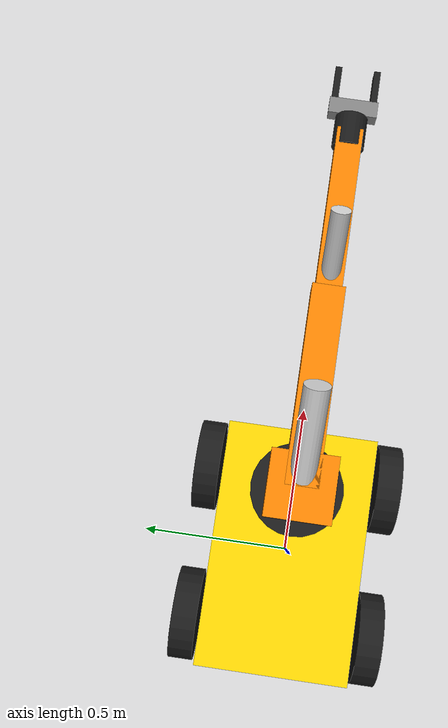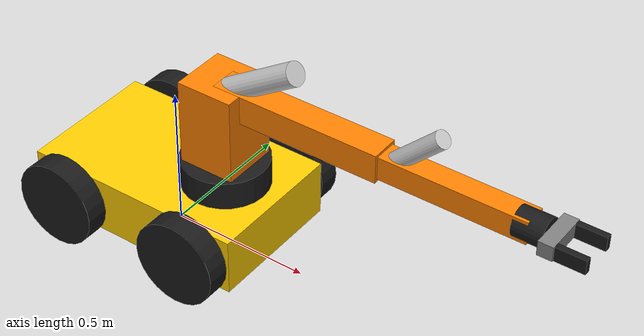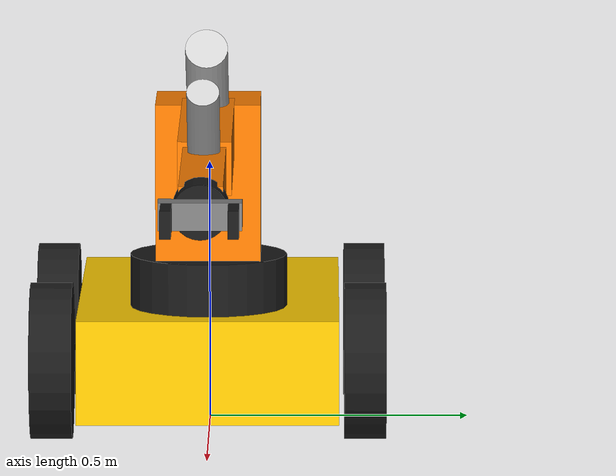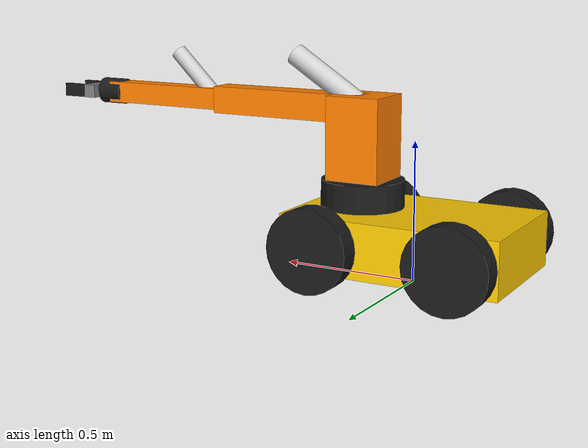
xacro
<?xml version="1.0"?>
<robot xmlns:xacro="http://www.ros.org/wiki/xacro" name="hydraulic_mobile_robot">

    <!-- Include sub-components -->
    <xacro:include filename="$(find hydraulic_bot)/urdf/mobile_base.xacro" />
    <xacro:include filename="$(find hydraulic_bot)/urdf/hydraulic_arm.xacro" />

    <!-- Create the robot -->
    <xacro:mobile_base />
    <xacro:hydraulic_arm parent="base_link" />

    <!-- Gazebo plugins (Global) -->
    <gazebo>
        <!-- Joint State Publisher -->
        <plugin filename="gz-sim-joint-state-publisher-system" name="gz::sim::systems::JointStatePublisher">
            <topic>joint_states</topic>
        </plugin>
    </gazebo>

</robot>

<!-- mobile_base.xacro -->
<robot xmlns:xacro="http://www.ros.org/wiki/xacro">

    <xacro:macro name="mobile_base">

        <!-- Base Footprint -->
        <link name="base_footprint" />

        <!-- Base Link (Chassis) -->
        <link name="base_link">
            <visual>
                <geometry>
                    <box size="0.8 0.5 0.2"/>
                </geometry>
                <origin xyz="0 0 0.15" rpy="0 0 0"/>
                <material name="yellow"> <!-- Construction vehicle color -->
                    <color rgba="1.0 0.8 0.0 1.0"/>
                </material>
            </visual>
            <collision>
                <geometry>
                    <box size="0.8 0.5 0.2"/>
                </geometry>
                <origin xyz="0 0 0.15" rpy="0 0 0"/>
            </collision>
            <inertial>
                <mass value="20.0"/>
                <origin xyz="0 0 0.15" rpy="0 0 0"/>
                <inertia ixx="0.5" ixy="0.0" ixz="0.0" iyy="1.0" iyz="0.0" izz="1.0"/>
            </inertial>
        </link>

        <joint name="base_joint" type="fixed">
            <parent link="base_footprint"/>
            <child link="base_link"/>
            <origin xyz="0 0 0.0" rpy="0 0 0"/>
        </joint>

        <!-- Wheels Macro -->
        <xacro:macro name="wheel" params="prefix x_reflect y_reflect">
            <link name="${prefix}_wheel">
                <visual>
                    <geometry>
                        <cylinder radius="0.15" length="0.08"/>
                    </geometry>
                    <origin xyz="0 0 0" rpy="${pi/2} 0 0"/>
                    <material name="black">
                        <color rgba="0.1 0.1 0.1 1.0"/>
                    </material>
                </visual>
                <collision>
                    <geometry>
                        <cylinder radius="0.15" length="0.08"/>
                    </geometry>
                    <origin xyz="0 0 0" rpy="${pi/2} 0 0"/>
                    <surface>
                        <friction>
                            <ode>
                                <mu>1.0</mu>
                                <mu2>1.0</mu2>
                            </ode>
                        </friction>
                    </surface>
                </collision>
                <inertial>
                    <mass value="2.0"/>
                    <origin xyz="0 0 0" rpy="${pi/2} 0 0"/>
                    <inertia ixx="0.02" ixy="0.0" ixz="0.0" iyy="0.02" iyz="0.0" izz="0.04"/>
                </inertial>
            </link>

            <joint name="${prefix}_wheel_joint" type="continuous">
                <parent link="base_link"/>
                <child link="${prefix}_wheel"/>
                <origin xyz="${x_reflect*0.25} ${y_reflect*0.3} 0.15" rpy="0 0 0"/>
                <axis xyz="0 1 0"/>
            </joint>
        </xacro:macro>

        <xacro:wheel prefix="front_left" x_reflect="1" y_reflect="1"/>
        <xacro:wheel prefix="front_right" x_reflect="1" y_reflect="-1"/>
        <xacro:wheel prefix="rear_left" x_reflect="-1" y_reflect="1"/>
        <xacro:wheel prefix="rear_right" x_reflect="-1" y_reflect="-1"/>

        <!-- Gazebo Plugin for Skid Steer Drive -->

        <gazebo>
            <plugin filename="gz-sim-diff-drive-system" name="gz::sim::systems::DiffDrive">
                <!-- Rear wheels -->
                <left_joint>rear_left_wheel_joint</left_joint>
                <right_joint>rear_right_wheel_joint</right_joint>
                <wheel_separation>0.6</wheel_separation>
                <wheel_radius>0.15</wheel_radius>
                <max_linear_acceleration>1.0</max_linear_acceleration>
                <odom_publish_frequency>30</odom_publish_frequency>
                <topic>cmd_vel</topic>
                <odom_topic>odom</odom_topic>
                <tf_topic>tf</tf_topic>
                <frame_id>odom</frame_id>
                <child_frame_id>base_footprint</child_frame_id>
            </plugin>

             <plugin filename="gz-sim-diff-drive-system" name="gz::sim::systems::DiffDrive">
                <left_joint>front_left_wheel_joint</left_joint>
                <right_joint>front_right_wheel_joint</right_joint>
                <wheel_separation>0.6</wheel_separation>
                <wheel_radius>0.15</wheel_radius>
                <topic>cmd_vel</topic> <!-- Listen to same topic -->
                 <odom_publish_frequency>0</odom_publish_frequency> <!-- Don't publish odom twice -->
            </plugin>
        </gazebo>

    </xacro:macro>
</robot>

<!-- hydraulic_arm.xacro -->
<robot xmlns:xacro="http://www.ros.org/wiki/xacro">

    <xacro:macro name="hydraulic_arm" params="parent">

        <!-- Arm Base -->
        <link name="arm_base_link">
             <visual>
                <geometry>
                    <cylinder radius="0.15" length="0.1"/>
                </geometry>
                <origin xyz="0 0 0.05" rpy="0 0 0"/>
                <material name="black">
                    <color rgba="0.1 0.1 0.1 1.0"/>
                </material>
            </visual>
            <collision>
                <geometry>
                    <cylinder radius="0.15" length="0.1"/>
                </geometry>
                <origin xyz="0 0 0.05" rpy="0 0 0"/>
            </collision>
            <inertial>
                <mass value="5.0"/>
                <origin xyz="0 0 0.05" rpy="0 0 0"/>
                <inertia ixx="0.05" ixy="0.0" ixz="0.0" iyy="0.05" iyz="0.0" izz="0.1"/>
            </inertial>
        </link>

        <joint name="arm_base_joint" type="fixed">
            <parent link="${parent}"/>
            <child link="arm_base_link"/>
            <origin xyz="0.2 0 0.25" rpy="0 0 0"/> <!-- Mounted on top of the car chassis -->
        </joint>

        <!-- Shoulder (Joint 1) - Turret rotation (Z-axis) -->
        <link name="shoulder_link">
            <visual>
                <geometry>
                    <box size="0.2 0.2 0.3"/>
                </geometry>
                <origin xyz="0 0 0.15" rpy="0 0 0"/>
                <material name="orange">
                    <color rgba="1.0 0.5 0.0 1.0"/>
                </material>
            </visual>
            <collision>
                <geometry>
                    <box size="0.2 0.2 0.3"/>
                </geometry>
                <origin xyz="0 0 0.15" rpy="0 0 0"/>
            </collision>
             <inertial>
                <mass value="3.0"/>
                <origin xyz="0 0 0.15" rpy="0 0 0"/>
                <inertia ixx="0.1" ixy="0.0" ixz="0.0" iyy="0.1" iyz="0.0" izz="0.1"/>
            </inertial>
        </link>

        <joint name="shoulder_joint" type="revolute">
            <parent link="arm_base_link"/>
            <child link="shoulder_link"/>
            <origin xyz="0 0 0.1" rpy="0 0 0"/>
            <axis xyz="0 0 1"/>
            <limit lower="-3.14" upper="3.14" effort="100.0" velocity="1.0"/>
            <dynamics damping="1.0" friction="1.0"/>
        </joint>

        <!-- Upper Arm (Joint 2) - Lift (Y-axis) -->
        <link name="upper_arm_link">
             <visual>
                <geometry>
                    <box size="0.6 0.1 0.1"/>
                </geometry>
                <origin xyz="0.3 0 0" rpy="0 0 0"/>
                <material name="orange"/>
            </visual>
            <visual> <!-- Hydraulic Piston Visual -->
                <geometry>
                    <cylinder radius="0.04" length="0.3"/>
                </geometry>
                <origin xyz="0.15 0 0.1" rpy="0 1.0 0"/>
                <material name="silver">
                    <color rgba="0.8 0.8 0.8 1.0"/>
                </material>
            </visual>
            <collision>
                 <geometry>
                    <box size="0.6 0.1 0.1"/>
                </geometry>
                <origin xyz="0.3 0 0" rpy="0 0 0"/>
            </collision>
            <inertial>
                <mass value="2.0"/>
                <origin xyz="0.3 0 0" rpy="0 0 0"/>
                <inertia ixx="0.01" ixy="0.0" ixz="0.0" iyy="0.1" iyz="0.0" izz="0.1"/>
            </inertial>
        </link>

        <joint name="lift_joint" type="revolute">
            <parent link="shoulder_link"/>
            <child link="upper_arm_link"/>
            <origin xyz="0 0 0.25" rpy="0 0 0"/>
            <axis xyz="0 1 0"/>
            <limit lower="-1.0" upper="1.5" effort="200.0" velocity="0.5"/>
            <dynamics damping="1.0" friction="1.0"/>
        </joint>

        <!-- Forearm (Joint 3) - Reach (Y-axis) -->
        <link name="forearm_link">
             <visual>
                <geometry>
                    <box size="0.5 0.08 0.08"/>
                </geometry>
                <origin xyz="0.25 0 0" rpy="0 0 0"/>
                <material name="orange"/>
            </visual>
            <visual> <!-- Hydraulic Piston Visual -->
                 <geometry>
                    <cylinder radius="0.03" length="0.25"/>
                </geometry>
                <origin xyz="0.1 0 0.08" rpy="0 0.8 0"/>
                <material name="silver"/>
            </visual>
             <collision>
                <geometry>
                    <box size="0.5 0.08 0.08"/>
                </geometry>
                <origin xyz="0.25 0 0" rpy="0 0 0"/>
            </collision>
            <inertial>
                <mass value="1.5"/>
                <origin xyz="0.25 0 0" rpy="0 0 0"/>
                <inertia ixx="0.01" ixy="0.0" ixz="0.0" iyy="0.05" iyz="0.0" izz="0.05"/>
            </inertial>
        </link>

        <joint name="elbow_joint" type="revolute">
            <parent link="upper_arm_link"/>
            <child link="forearm_link"/>
            <origin xyz="0.6 0 0" rpy="0 0 0"/>
            <axis xyz="0 1 0"/>
            <limit lower="-2.0" upper="2.0" effort="150.0" velocity="0.8"/>
            <dynamics damping="0.5" friction="0.5"/>
        </joint>

        <!-- Wrist -->
        <link name="wrist_link">
            <visual>
                <geometry>
                    <cylinder radius="0.05" length="0.1"/>
                </geometry>
                <origin xyz="0 0 0" rpy="0 1.57 0"/>
                <material name="black"/>
            </visual>
            <collision>
                 <geometry>
                    <cylinder radius="0.05" length="0.1"/>
                </geometry>
                <origin xyz="0 0 0" rpy="0 1.57 0"/>
            </collision>
            <inertial>
                <mass value="0.5"/>
                <origin xyz="0 0 0" rpy="0 0 0"/>
                <inertia ixx="0.01" ixy="0.0" ixz="0.0" iyy="0.01" iyz="0.0" izz="0.01"/>
            </inertial>
        </link>

        <joint name="wrist_joint" type="revolute">
            <parent link="forearm_link"/>
            <child link="wrist_link"/>
            <origin xyz="0.5 0 0" rpy="0 0 0"/>
            <axis xyz="0 1 0"/>
            <limit lower="-1.5" upper="1.5" effort="50.0" velocity="1.0"/>
        </joint>

        <!-- Gripper -->
        <link name="gripper_base">
             <visual>
                <geometry>
                    <box size="0.05 0.15 0.05"/>
                </geometry>
                <origin xyz="0.025 0 0" rpy="0 0 0"/>
                <material name="grey">
                    <color rgba="0.5 0.5 0.5 1.0"/>
                </material>
            </visual>
            <collision>
                <geometry>
                    <box size="0.05 0.15 0.05"/>
                </geometry>
                <origin xyz="0.025 0 0" rpy="0 0 0"/>
            </collision>
             <inertial>
                <mass value="0.5"/>
                <origin xyz="0.025 0 0" rpy="0 0 0"/>
                <inertia ixx="0.01" ixy="0.0" ixz="0.0" iyy="0.01" iyz="0.0" izz="0.01"/>
            </inertial>
        </link>

        <joint name="gripper_joint" type="fixed">
            <parent link="wrist_link"/>
            <child link="gripper_base"/>
            <origin xyz="0.05 0 0" rpy="0 0 0"/>
        </joint>

        <!-- Fingers (Claw style) -->
        <link name="finger_left">
            <visual>
                <geometry>
                    <box size="0.1 0.02 0.05"/>
                </geometry>
                <origin xyz="0.05 0 0" rpy="0 0 0"/>
                <material name="black"/>
            </visual>
            <collision>
                <geometry>
                    <box size="0.1 0.02 0.05"/>
                </geometry>
                <origin xyz="0.05 0 0" rpy="0 0 0"/>
                <surface>
                    <friction>
                        <ode>
                             <mu>2.0</mu>
                             <mu2>2.0</mu2>
                        </ode>
                    </friction>
                </surface>
            </collision>
            <inertial>
                <mass value="0.1"/>
                <origin xyz="0.05 0 0" rpy="0 0 0"/>
                <inertia ixx="0.001" ixy="0.0" ixz="0.0" iyy="0.001" iyz="0.0" izz="0.001"/>
            </inertial>
        </link>

        <joint name="finger_left_joint" type="prismatic">
            <parent link="gripper_base"/>
            <child link="finger_left"/>
            <origin xyz="0.05 0.06 0" rpy="0 0 0"/>
            <axis xyz="0 1 0"/>
            <limit lower="-0.01" upper="0.05" effort="50.0" velocity="0.5"/>
        </joint>

        <link name="finger_right">
            <visual>
                <geometry>
                    <box size="0.1 0.02 0.05"/>
                </geometry>
                <origin xyz="0.05 0 0" rpy="0 0 0"/>
                <material name="black"/>
            </visual>
             <collision>
                <geometry>
                    <box size="0.1 0.02 0.05"/>
                </geometry>
                <origin xyz="0.05 0 0" rpy="0 0 0"/>
                 <surface>
                    <friction>
                        <ode>
                             <mu>2.0</mu>
                             <mu2>2.0</mu2>
                        </ode>
                    </friction>
                </surface>
            </collision>
            <inertial>
                <mass value="0.1"/>
                <origin xyz="0.05 0 0" rpy="0 0 0"/>
                <inertia ixx="0.001" ixy="0.0" ixz="0.0" iyy="0.001" iyz="0.0" izz="0.001"/>
            </inertial>
        </link>

        <joint name="finger_right_joint" type="prismatic">
            <parent link="gripper_base"/>
            <child link="finger_right"/>
            <origin xyz="0.05 -0.06 0" rpy="0 0 0"/>
            <axis xyz="0 -1 0"/>
            <mimic joint="finger_left_joint"/>
            <limit lower="-0.01" upper="0.05" effort="50.0" velocity="0.5"/>
        </joint>

        <!-- Gazebo Plugins for Joint Control -->
        <gazebo>
            <plugin filename="gz-sim-joint-position-controller-system" name="gz::sim::systems::JointPositionController">
                <joint_name>shoulder_joint</joint_name>
                <p_gain>1000</p_gain>
                <i_gain>10</i_gain>
                <d_gain>50</d_gain>
            </plugin>
             <plugin filename="gz-sim-joint-position-controller-system" name="gz::sim::systems::JointPositionController">
                <joint_name>lift_joint</joint_name>
                <p_gain>5000</p_gain>
                <i_gain>50</i_gain>
                <d_gain>100</d_gain>
            </plugin>
             <plugin filename="gz-sim-joint-position-controller-system" name="gz::sim::systems::JointPositionController">
                <joint_name>elbow_joint</joint_name>
                <p_gain>2000</p_gain>
                <i_gain>20</i_gain>
                <d_gain>50</d_gain>
            </plugin>
            <plugin filename="gz-sim-joint-position-controller-system" name="gz::sim::systems::JointPositionController">
                <joint_name>wrist_joint</joint_name>
                <p_gain>500</p_gain>
                <i_gain>5</i_gain>
                <d_gain>10</d_gain>
            </plugin>
            <plugin filename="gz-sim-joint-position-controller-system" name="gz::sim::systems::JointPositionController">
                <joint_name>finger_left_joint</joint_name>
                <p_gain>500</p_gain>
                <i_gain>10</i_gain>
                <d_gain>10</d_gain>
            </plugin>
             <plugin filename="gz-sim-joint-position-controller-system" name="gz::sim::systems::JointPositionController">
                <joint_name>finger_right_joint</joint_name>
                <p_gain>500</p_gain>
                <i_gain>10</i_gain>
                <d_gain>10</d_gain>
            </plugin>
        </gazebo>

    </xacro:macro>

</robot>
